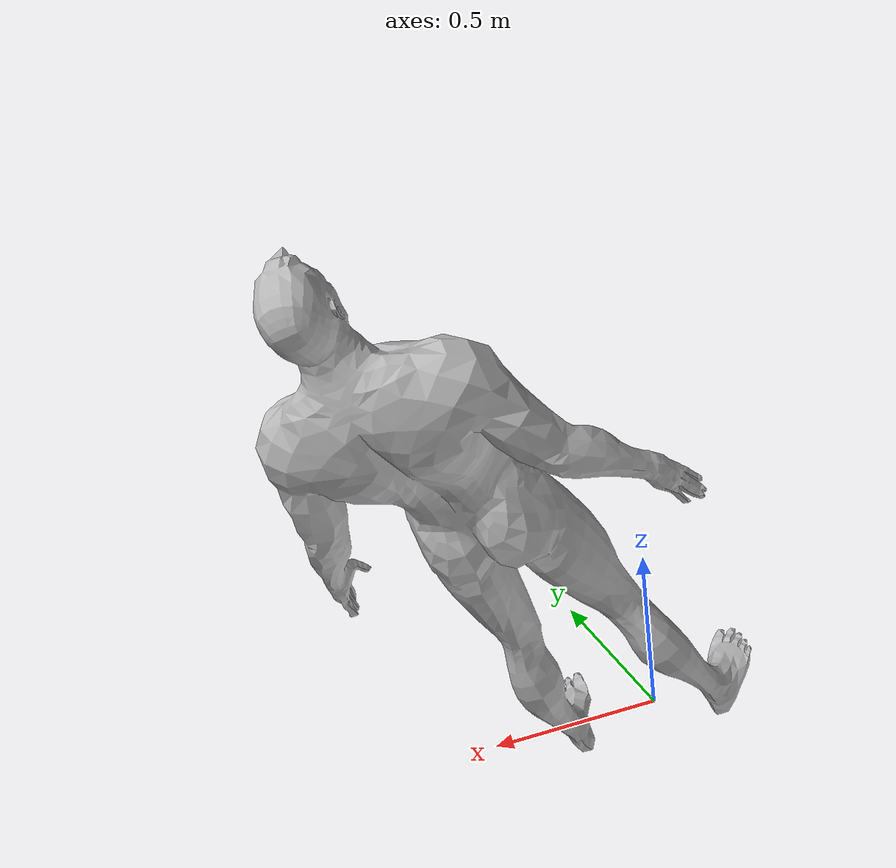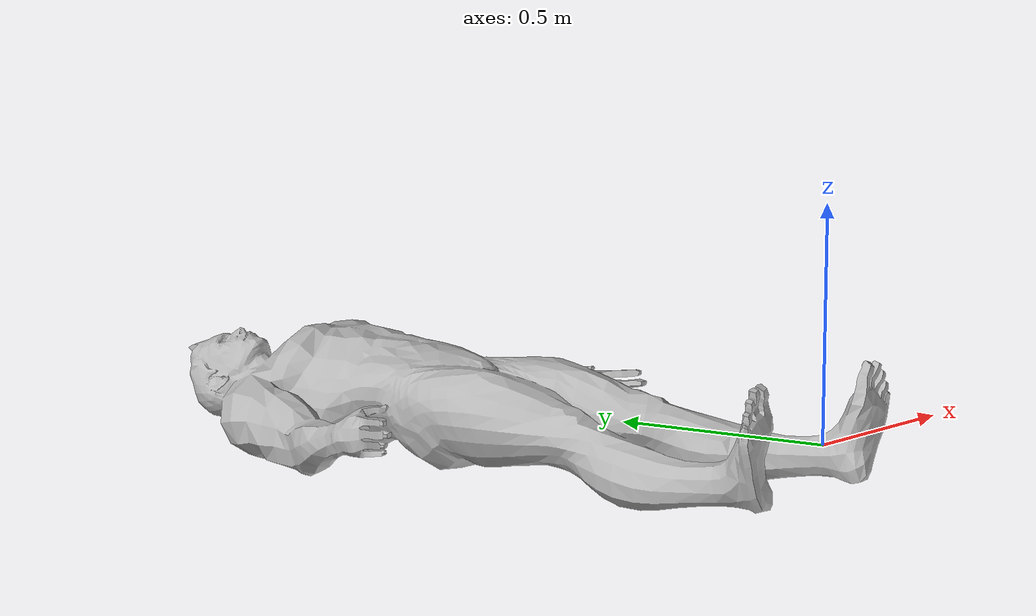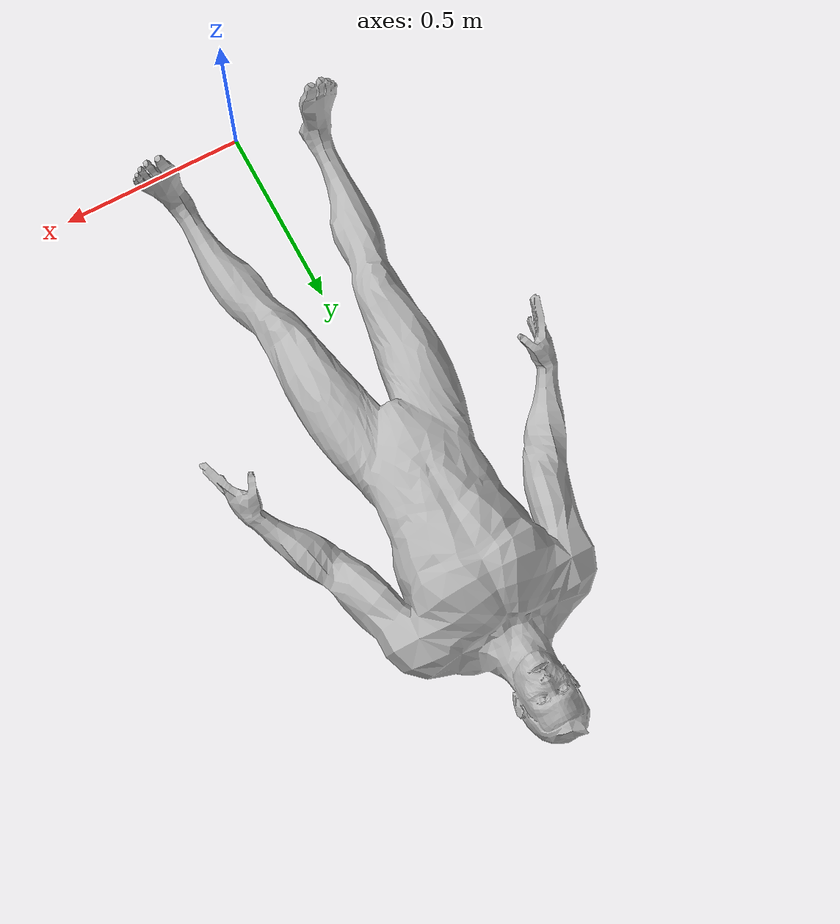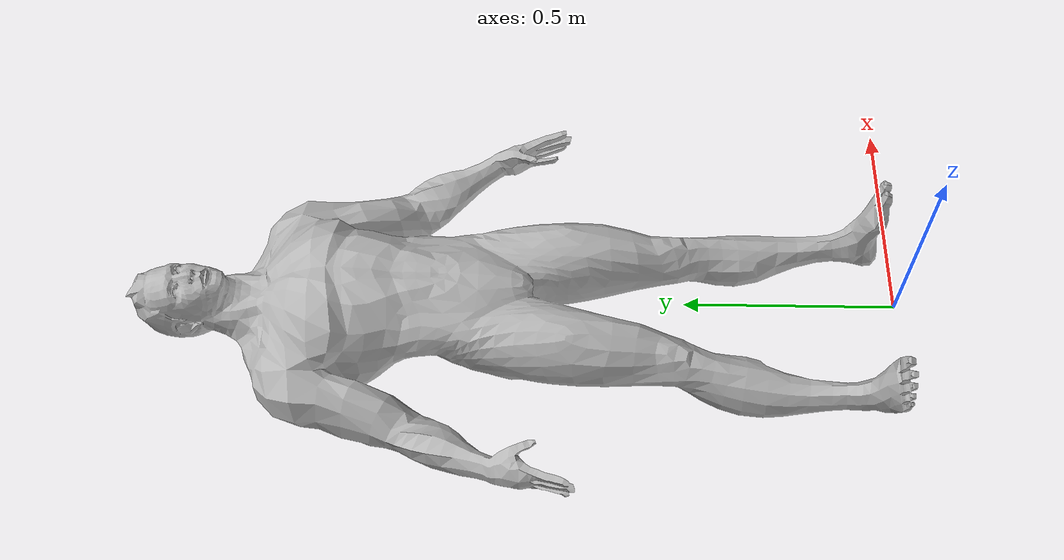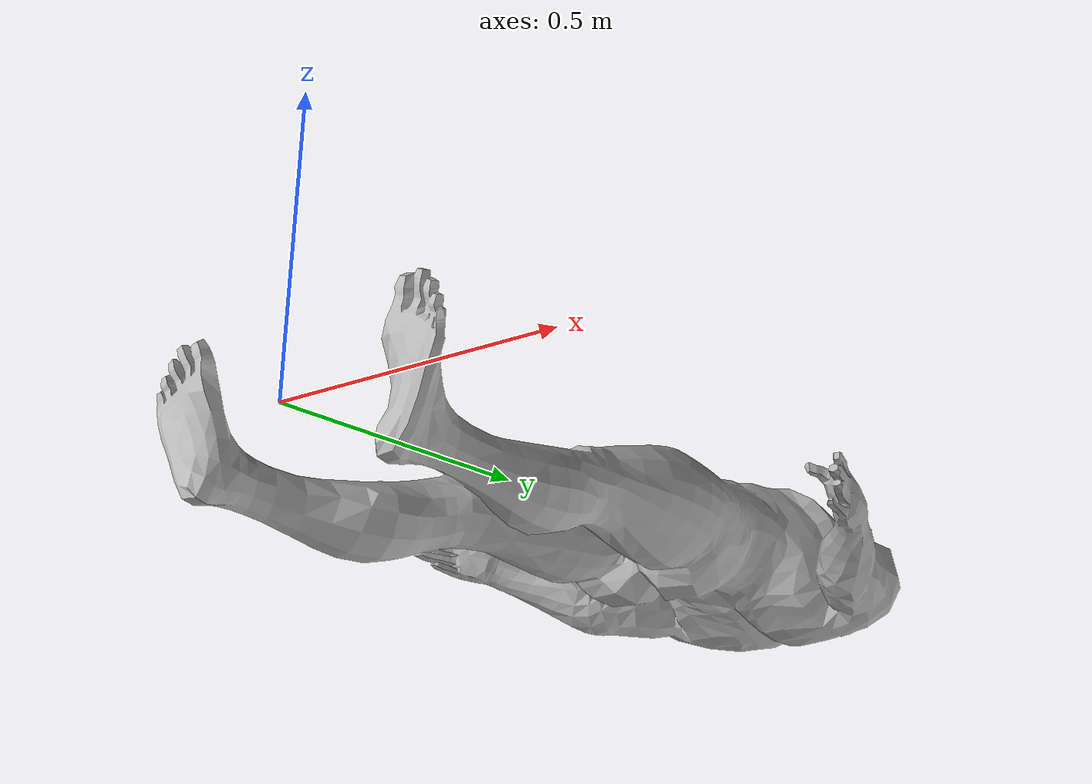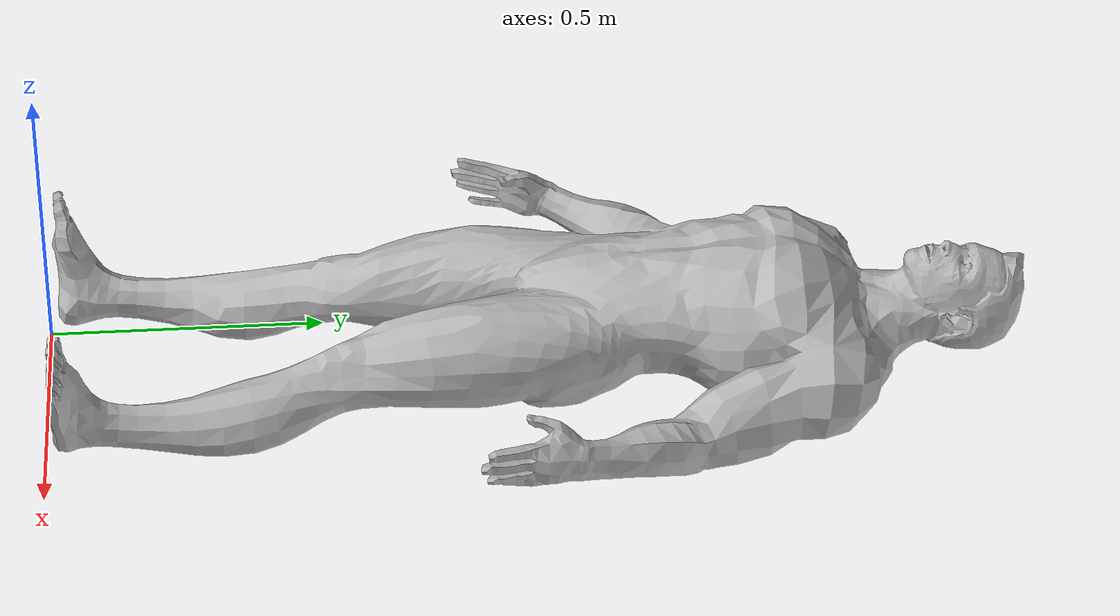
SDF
<?xml version="1.0" ?>
<sdf version="1.6">
  <model name="man">
    <static>true</static>
    <link name="man_link">

      <!-- Visual representation -->
      <visual name="man_visual">
        <geometry>
          <mesh>
            <uri>package://41068_ignition_bringup/models/Animal_Models/man/meshes/Man.obj</uri>
            <scale>0.01 0.01 0.01</scale>
          </mesh>
        </geometry>
      </visual>

      <!-- Collision geometry -->
      <collision name="man_collision">
        <geometry>
          <mesh>
            <uri>package://41068_ignition_bringup/models/Animal_Models/man/meshes/Man.obj</uri>
            <scale>0.01 0.01 0.01</scale>
          </mesh>
        </geometry>
      </collision>

    </link>
  </model>
</sdf>
